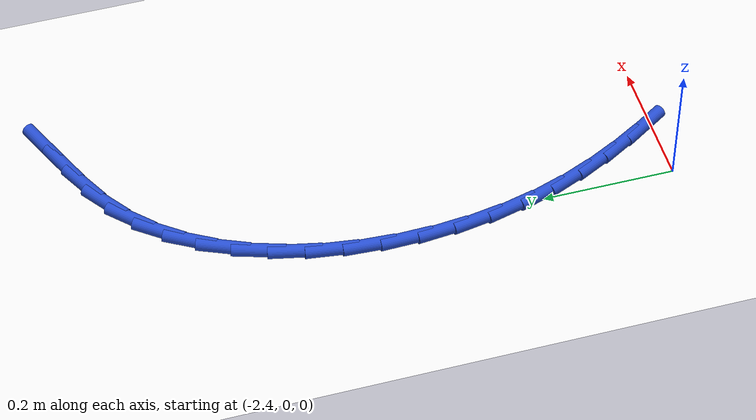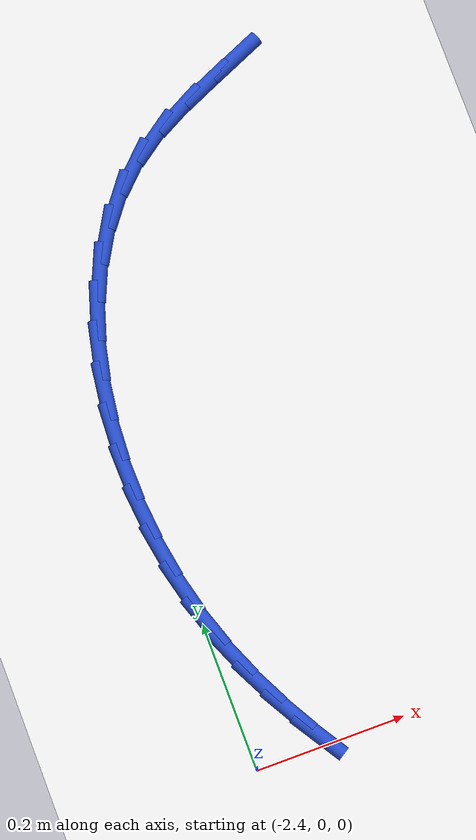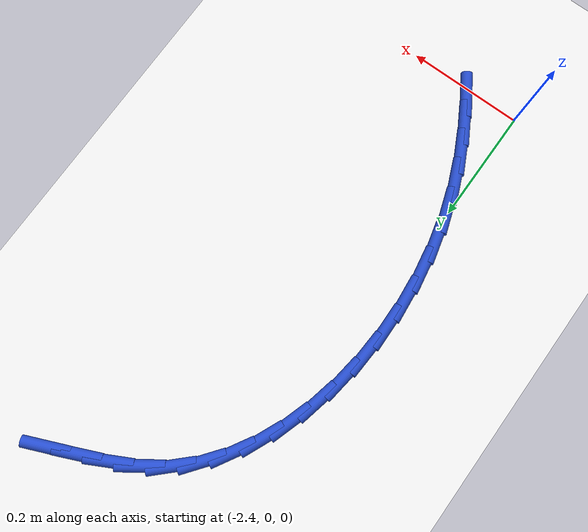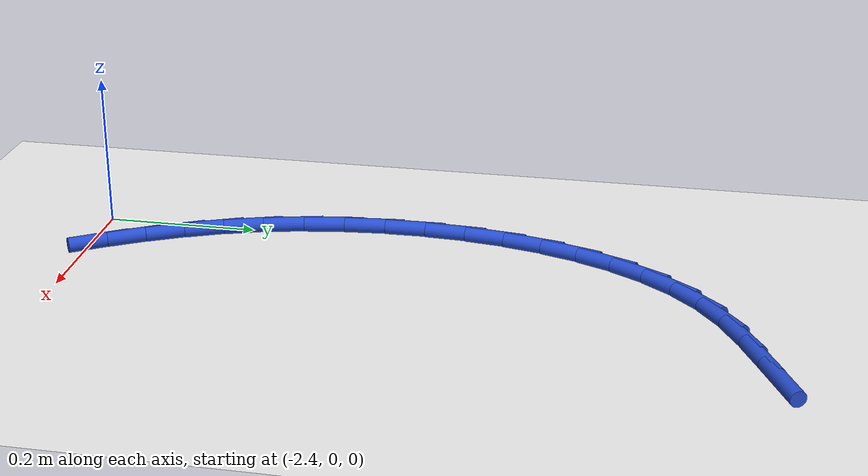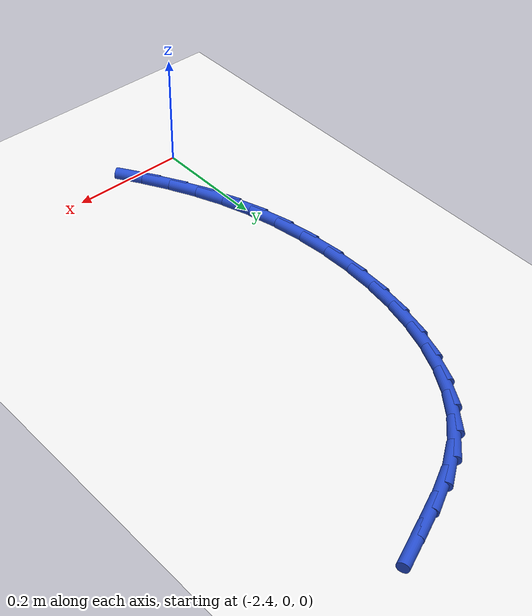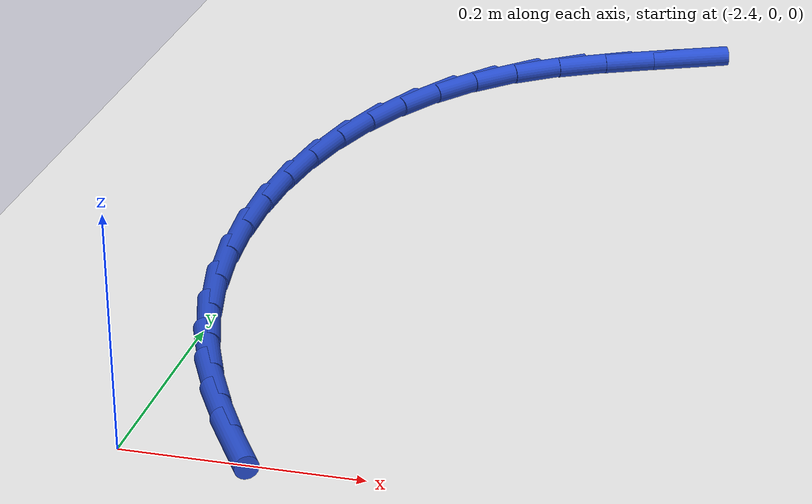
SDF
<sdf version="1.6">
 <world name="default">
  <model name="ground_plane">
   <static>1</static>
   <link name="link">
    <collision name="collision">
     <geometry><plane><normal>0 0 1</normal><size>100 100</size></plane></geometry>
     <surface><friction><ode><mu>100</mu><mu2>50</mu2></ode></friction></surface>
    </collision>
    <visual name="visual">
     <cast_shadows>0</cast_shadows>
     <geometry><plane><normal>0 0 1</normal><size>100 100</size></plane></geometry>
     <material>
      <script><uri>file://media/materials/scripts/gazebo.material</uri><name>Gazebo/WhiteGlow</name></script>
     </material>
    </visual>
   </link>
  </model>
  <model name="line">
   <link name="link_59">
    <pose>-2.1017886210862855 0.883432718034488 0.01 0 1.57 0.40563265341808996</pose>
    <collision name="collision">
     <geometry><cylinder><radius>0.01</radius><length>0.08</length></cylinder></geometry>
    </collision>
    <visual name="visual">
     <material>
      <script><name>Gazebo/Blue</name><uri>file://media/materials/scripts/gazebo.material</uri></script>
     </material>
     <geometry><cylinder><radius>0.01</radius><length>0.08</length></cylinder></geometry>
    </visual>
   </link>
   <link name="link_60">
    <pose>-2.148292374266204 0.8634617439169077 0.01 0 1.57 0.41788803237292255</pose>
    <collision name="collision">
     <geometry><cylinder><radius>0.01</radius><length>0.08</length></cylinder></geometry>
    </collision>
    <visual name="visual">
     <material>
      <script><name>Gazebo/Blue</name><uri>file://media/materials/scripts/gazebo.material</uri></script>
     </material>
     <geometry><cylinder><radius>0.01</radius><length>0.08</length></cylinder></geometry>
    </visual>
   </link>
   <link name="link_61">
    <pose>-2.1941293711009187 0.8431082023291221 0.01 0 1.57 0.48643858706138365</pose>
    <collision name="collision">
     <geometry><cylinder><radius>0.01</radius><length>0.08</length></cylinder></geometry>
    </collision>
    <visual name="visual">
     <material>
      <script><name>Gazebo/Blue</name><uri>file://media/materials/scripts/gazebo.material</uri></script>
     </material>
     <geometry><cylinder><radius>0.01</radius><length>0.08</length></cylinder></geometry>
    </visual>
   </link>
   <link name="link_62">
    <pose>-2.2376252007400925 0.8201066439371746 0.01 0 1.57 0.6198283572296684</pose>
    <collision name="collision">
     <geometry><cylinder><radius>0.01</radius><length>0.08</length></cylinder></geometry>
    </collision>
    <visual name="visual">
     <material>
      <script><name>Gazebo/Blue</name><uri>file://media/materials/scripts/gazebo.material</uri></script>
     </material>
     <geometry><cylinder><radius>0.01</radius><length>0.08</length></cylinder></geometry>
    </visual>
   </link>
   <link name="link_63">
    <pose>-2.2769815223140015 0.7920200083857877 0.01 0 1.57 0.7752657073368754</pose>
    <collision name="collision">
     <geometry><cylinder><radius>0.01</radius><length>0.08</length></cylinder></geometry>
    </collision>
    <visual name="visual">
     <material>
      <script><name>Gazebo/Blue</name><uri>file://media/materials/scripts/gazebo.material</uri></script>
     </material>
     <geometry><cylinder><radius>0.01</radius><length>0.08</length></cylinder></geometry>
    </visual>
   </link>
   <link name="link_64">
    <pose>-2.3114867878918157 0.7582069984237031 0.01 0 1.57 0.9181077371622427</pose>
    <collision name="collision">
     <geometry><cylinder><radius>0.01</radius><length>0.08</length></cylinder></geometry>
    </collision>
    <visual name="visual">
     <material>
      <script><name>Gazebo/Blue</name><uri>file://media/materials/scripts/gazebo.material</uri></script>
     </material>
     <geometry><cylinder><radius>0.01</radius><length>0.08</length></cylinder></geometry>
    </visual>
   </link>
   <link name="link_65">
    <pose>-2.341213171636389 0.7193213005718867 0.01 0 1.57 1.0463045350356581</pose>
    <collision name="collision">
     <geometry><cylinder><radius>0.01</radius><length>0.08</length></cylinder></geometry>
    </collision>
    <visual name="visual">
     <material>
      <script><name>Gazebo/Blue</name><uri>file://media/materials/scripts/gazebo.material</uri></script>
     </material>
     <geometry><cylinder><radius>0.01</radius><length>0.08</length></cylinder></geometry>
    </visual>
   </link>
   <link name="link_66">
    <pose>-2.36625017567037 0.6760452332182856 0.01 0 1.57 1.1605034433810284</pose>
    <collision name="collision">
     <geometry><cylinder><radius>0.01</radius><length>0.08</length></cylinder></geometry>
    </collision>
    <visual name="visual">
     <material>
      <script><name>Gazebo/Blue</name><uri>file://media/materials/scripts/gazebo.material</uri></script>
     </material>
     <geometry><cylinder><radius>0.01</radius><length>0.08</length></cylinder></geometry>
    </visual>
   </link>
   <link name="link_67">
    <pose>-2.386687302116405 0.6290611147508475 0.01 0 1.57 1.2624798153386554</pose>
    <collision name="collision">
     <geometry><cylinder><radius>0.01</radius><length>0.08</length></cylinder></geometry>
    </collision>
    <visual name="visual">
     <material>
      <script><name>Gazebo/Blue</name><uri>file://media/materials/scripts/gazebo.material</uri></script>
     </material>
     <geometry><cylinder><radius>0.01</radius><length>0.08</length></cylinder></geometry>
    </visual>
   </link>
   <link name="link_68">
    <pose>-2.402614053097141 0.579051263557519 0.01 0 1.57 1.3544617615261798</pose>
    <collision name="collision">
     <geometry><cylinder><radius>0.01</radius><length>0.08</length></cylinder></geometry>
    </collision>
    <visual name="visual">
     <material>
      <script><name>Gazebo/Blue</name><uri>file://media/materials/scripts/gazebo.material</uri></script>
     </material>
     <geometry><cylinder><radius>0.01</radius><length>0.08</length></cylinder></geometry>
    </visual>
   </link>
   <link name="link_69">
    <pose>-2.414119930735223 0.5266979980262476 0.01 0 1.57 1.4387433930792604</pose>
    <collision name="collision">
     <geometry><cylinder><radius>0.01</radius><length>0.08</length></cylinder></geometry>
    </collision>
    <visual name="visual">
     <material>
      <script><name>Gazebo/Blue</name><uri>file://media/materials/scripts/gazebo.material</uri></script>
     </material>
     <geometry><cylinder><radius>0.01</radius><length>0.08</length></cylinder></geometry>
    </visual>
   </link>
   <link name="link_70">
    <pose>-2.421294437153301 0.47268363654498075 0.01 0 1.57 1.5175194606865092</pose>
    <collision name="collision">
     <geometry><cylinder><radius>0.01</radius><length>0.08</length></cylinder></geometry>
    </collision>
    <visual name="visual">
     <material>
      <script><name>Gazebo/Blue</name><uri>file://media/materials/scripts/gazebo.material</uri></script>
     </material>
     <geometry><cylinder><radius>0.01</radius><length>0.08</length></cylinder></geometry>
    </visual>
   </link>
   <link name="link_71">
    <pose>-2.4242270744740204 0.4176904975016647 0.01 0 1.57 -1.5487391608929284</pose>
    <collision name="collision">
     <geometry><cylinder><radius>0.01</radius><length>0.08</length></cylinder></geometry>
    </collision>
    <visual name="visual">
     <material>
      <script><name>Gazebo/Blue</name><uri>file://media/materials/scripts/gazebo.material</uri></script>
     </material>
     <geometry><cylinder><radius>0.01</radius><length>0.08</length></cylinder></geometry>
    </visual>
   </link>
   <link name="link_72">
    <pose>-2.423007344820028 0.36240089928424774 0.01 0 1.57 -1.4748760223154675</pose>
    <collision name="collision">
     <geometry><cylinder><radius>0.01</radius><length>0.08</length></cylinder></geometry>
    </collision>
    <visual name="visual">
     <material>
      <script><name>Gazebo/Blue</name><uri>file://media/materials/scripts/gazebo.material</uri></script>
     </material>
     <geometry><cylinder><radius>0.01</radius><length>0.08</length></cylinder></geometry>
    </visual>
   </link>
   <link name="link_73">
    <pose>-2.417724750313972 0.30749716028067614 0.01 0 1.57 -1.4005308148073337</pose>
    <collision name="collision">
     <geometry><cylinder><radius>0.01</radius><length>0.08</length></cylinder></geometry>
    </collision>
    <visual name="visual">
     <material>
      <script><name>Gazebo/Blue</name><uri>file://media/materials/scripts/gazebo.material</uri></script>
     </material>
     <geometry><cylinder><radius>0.01</radius><length>0.08</length></cylinder></geometry>
    </visual>
   </link>
   <link name="link_74">
    <pose>-2.408468793078497 0.2536615988788979 0.01 0 1.57 -1.3236765897014144</pose>
    <collision name="collision">
     <geometry><cylinder><radius>0.01</radius><length>0.08</length></cylinder></geometry>
    </collision>
    <visual name="visual">
     <material>
      <script><name>Gazebo/Blue</name><uri>file://media/materials/scripts/gazebo.material</uri></script>
     </material>
     <geometry><cylinder><radius>0.01</radius><length>0.08</length></cylinder></geometry>
    </visual>
   </link>
   <link name="link_75">
    <pose>-2.3953289752362528 0.20157653346685991 0.01 0 1.57 -1.2436698901764756</pose>
    <collision name="collision">
     <geometry><cylinder><radius>0.01</radius><length>0.08</length></cylinder></geometry>
    </collision>
    <visual name="visual">
     <material>
      <script><name>Gazebo/Blue</name><uri>file://media/materials/scripts/gazebo.material</uri></script>
     </material>
     <geometry><cylinder><radius>0.01</radius><length>0.08</length></cylinder></geometry>
    </visual>
   </link>
   <link name="link_76">
    <pose>-2.378444381178982 0.15181604900090914 0.01 0 1.57 -1.1688323779469503</pose>
    <collision name="collision">
     <geometry><cylinder><radius>0.01</radius><length>0.08</length></cylinder></geometry>
    </collision>
    <visual name="visual">
     <material>
      <script><name>Gazebo/Blue</name><uri>file://media/materials/scripts/gazebo.material</uri></script>
     </material>
     <geometry><cylinder><radius>0.01</radius><length>0.08</length></cylinder></geometry>
    </visual>
   </link>
   <link name="link_77">
    <pose>-2.3582491461271853 0.10431016221963244 0.01 0 1.57 -1.1039270451371417</pose>
    <collision name="collision">
     <geometry><cylinder><radius>0.01</radius><length>0.08</length></cylinder></geometry>
    </collision>
    <visual name="visual">
     <material>
      <script><name>Gazebo/Blue</name><uri>file://media/materials/scripts/gazebo.material</uri></script>
     </material>
     <geometry><cylinder><radius>0.01</radius><length>0.08</length></cylinder></geometry>
    </visual>
   </link>
   <link name="link_78">
    <pose>-2.335286104644336 0.058751609416068155 0.01 0 1.57 -1.0500835560835633</pose>
    <collision name="collision">
     <geometry><cylinder><radius>0.01</radius><length>0.08</length></cylinder></geometry>
    </collision>
    <visual name="visual">
     <material>
      <script><name>Gazebo/Blue</name><uri>file://media/materials/scripts/gazebo.material</uri></script>
     </material>
     <geometry><cylinder><radius>0.01</radius><length>0.08</length></cylinder></geometry>
    </visual>
   </link>
   <link name="link_79">
    <pose>-2.3100982616329895 0.014832755049058795 0.01 0 1.57 -1.0079381348653917</pose>
    <collision name="collision">
     <geometry><cylinder><radius>0.01</radius><length>0.08</length></cylinder></geometry>
    </collision>
    <visual name="visual">
     <material>
      <script><name>Gazebo/Blue</name><uri>file://media/materials/scripts/gazebo.material</uri></script>
     </material>
     <geometry><cylinder><radius>0.01</radius><length>0.08</length></cylinder></geometry>
    </visual>
   </link>
  </model>
 </world>
</sdf>
